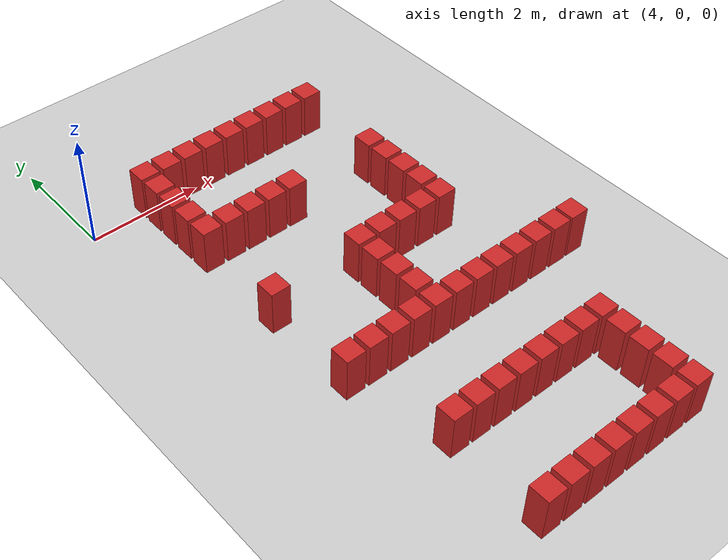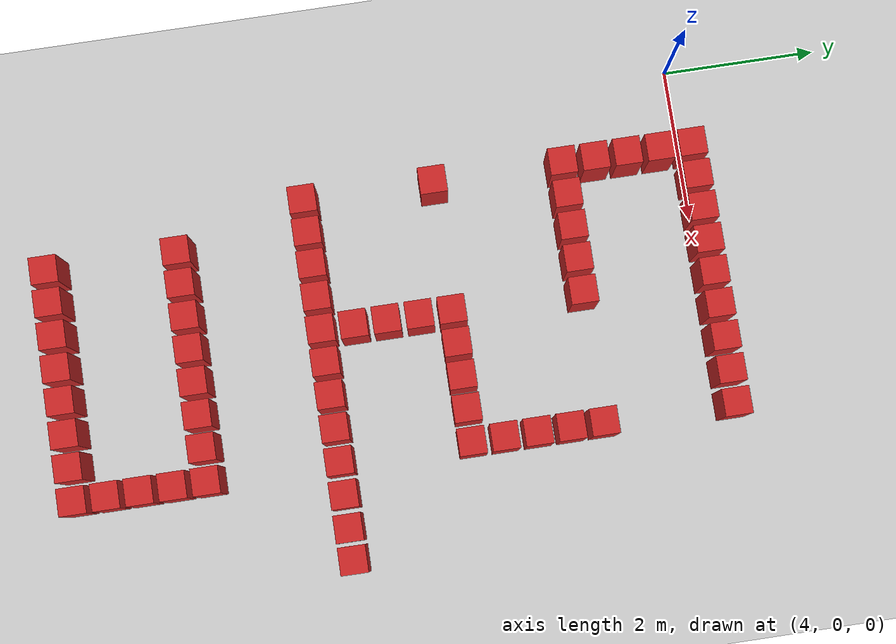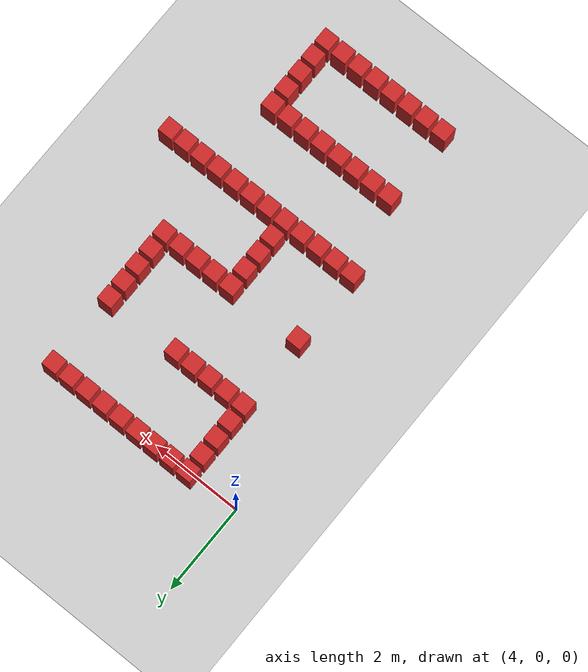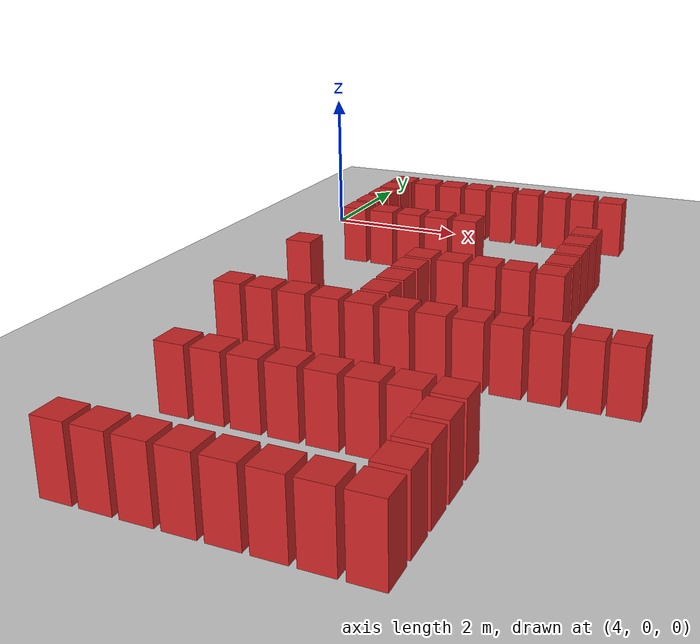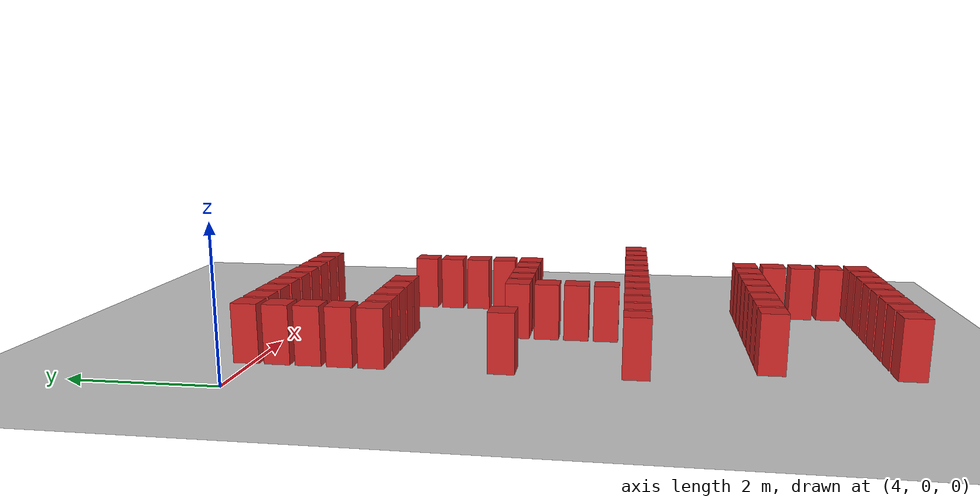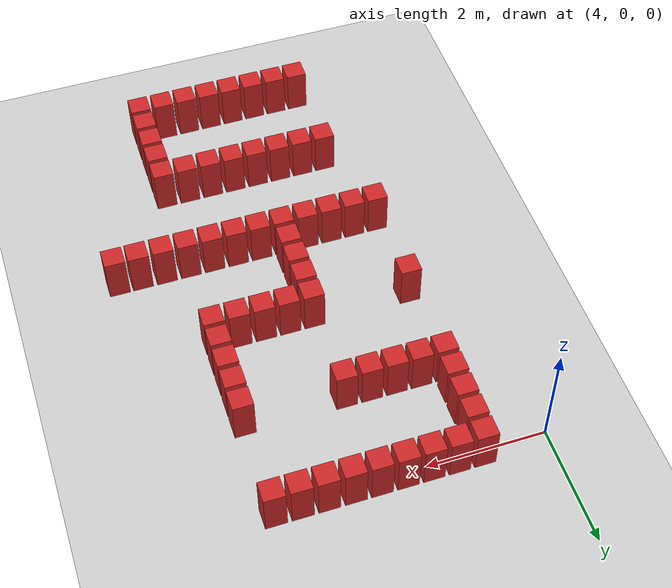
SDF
<sdf version="1.6">
 <world name="default">
  <model name="ground_plane">
   <static>1</static>
   <link name="link">
    <collision name="collision">
     <geometry><plane><normal>0 0 1</normal><size>100 100</size></plane></geometry>
     <surface><friction><ode><mu>100</mu><mu2>50</mu2></ode></friction></surface>
    </collision>
    <visual name="visual">
     <cast_shadows>0</cast_shadows>
     <geometry><plane><normal>0 0 1</normal><size>100 100</size></plane></geometry>
     <material>
      <script><uri>file://media/materials/scripts/gazebo.material</uri><name>Gazebo/Grey</name></script>
     </material>
    </visual>
   </link>
  </model>
  <model name="box_obstacle360">
   <static>0</static>
   <link name="link">
    <pose>0 0 0.1 0 -0 0</pose>
    <inertial>
     <mass>100</mass>
     <inertia>
      <ixx>0.166667</ixx>
      <ixy>0</ixy>
      <ixz>0</ixz>
      <iyy>0.166667</iyy>
      <iyz>0</iyz>
      <izz>0.166667</izz>
     </inertia>
    </inertial>
    <collision name="collision"><geometry><box><size>0.35 0.35 0.8</size></box></geometry></collision>
    <visual name="visual">
     <geometry><box><size>0.35 0.35 0.8</size></box></geometry>
     <material>
      <script><name>Gazebo/Red</name><uri>file://media/materials/scripts/gazebo.material</uri></script>
     </material>
    </visual>
   </link>
   <pose>5.11966 -4.95994 0.300001 -1e-06 1.7e-05 0.000735</pose>
  </model>
  <model name="box_obstacle361">
   <static>0</static>
   <link name="link">
    <pose>0 0 0.1 0 -0 0</pose>
    <inertial>
     <mass>100</mass>
     <inertia>
      <ixx>0.166667</ixx>
      <ixy>0</ixy>
      <ixz>0</ixz>
      <iyy>0.166667</iyy>
      <iyz>0</iyz>
      <izz>0.166667</izz>
     </inertia>
    </inertial>
    <collision name="collision"><geometry><box><size>0.35 0.35 0.8</size></box></geometry></collision>
    <visual name="visual">
     <geometry><box><size>0.35 0.35 0.8</size></box></geometry>
     <material>
      <script><name>Gazebo/Red</name><uri>file://media/materials/scripts/gazebo.material</uri></script>
     </material>
    </visual>
   </link>
   <pose>5.11966 -3.27994 0.300001 -1e-06 1.7e-05 0.000735</pose>
  </model>
  <model name="box_obstacle362">
   <static>0</static>
   <link name="link">
    <pose>0 0 0.1 0 -0 0</pose>
    <inertial>
     <mass>100</mass>
     <inertia>
      <ixx>0.166667</ixx>
      <ixy>0</ixy>
      <ixz>0</ixz>
      <iyy>0.166667</iyy>
      <iyz>0</iyz>
      <izz>0.166667</izz>
     </inertia>
    </inertial>
    <collision name="collision"><geometry><box><size>0.35 0.35 0.8</size></box></geometry></collision>
    <visual name="visual">
     <geometry><box><size>0.35 0.35 0.8</size></box></geometry>
     <material>
      <script><name>Gazebo/Red</name><uri>file://media/materials/scripts/gazebo.material</uri></script>
     </material>
    </visual>
   </link>
   <pose>5.11966 -1.59994 0.300001 -1e-06 1.7e-05 0.000735</pose>
  </model>
  <model name="box_obstacle363">
   <static>0</static>
   <link name="link">
    <pose>0 0 0.1 0 -0 0</pose>
    <inertial>
     <mass>100</mass>
     <inertia>
      <ixx>0.166667</ixx>
      <ixy>0</ixy>
      <ixz>0</ixz>
      <iyy>0.166667</iyy>
      <iyz>0</iyz>
      <izz>0.166667</izz>
     </inertia>
    </inertial>
    <collision name="collision"><geometry><box><size>0.35 0.35 0.8</size></box></geometry></collision>
    <visual name="visual">
     <geometry><box><size>0.35 0.35 0.8</size></box></geometry>
     <material>
      <script><name>Gazebo/Red</name><uri>file://media/materials/scripts/gazebo.material</uri></script>
     </material>
    </visual>
   </link>
   <pose>5.11966 -1.17994 0.300001 -1e-06 1.7e-05 0.000735</pose>
  </model>
  <model name="box_obstacle364">
   <static>0</static>
   <link name="link">
    <pose>0 0 0.1 0 -0 0</pose>
    <inertial>
     <mass>100</mass>
     <inertia>
      <ixx>0.166667</ixx>
      <ixy>0</ixy>
      <ixz>0</ixz>
      <iyy>0.166667</iyy>
      <iyz>0</iyz>
      <izz>0.166667</izz>
     </inertia>
    </inertial>
    <collision name="collision"><geometry><box><size>0.35 0.35 0.8</size></box></geometry></collision>
    <visual name="visual">
     <geometry><box><size>0.35 0.35 0.8</size></box></geometry>
     <material>
      <script><name>Gazebo/Red</name><uri>file://media/materials/scripts/gazebo.material</uri></script>
     </material>
    </visual>
   </link>
   <pose>5.11966 -0.759939 0.300001 -1e-06 1.7e-05 0.000735</pose>
  </model>
  <model name="box_obstacle365">
   <static>0</static>
   <link name="link">
    <pose>0 0 0.1 0 -0 0</pose>
    <inertial>
     <mass>100</mass>
     <inertia>
      <ixx>0.166667</ixx>
      <ixy>0</ixy>
      <ixz>0</ixz>
      <iyy>0.166667</iyy>
      <iyz>0</iyz>
      <izz>0.166667</izz>
     </inertia>
    </inertial>
    <collision name="collision"><geometry><box><size>0.35 0.35 0.8</size></box></geometry></collision>
    <visual name="visual">
     <geometry><box><size>0.35 0.35 0.8</size></box></geometry>
     <material>
      <script><name>Gazebo/Red</name><uri>file://media/materials/scripts/gazebo.material</uri></script>
     </material>
    </visual>
   </link>
   <pose>5.11966 -0.339939 0.300001 -1e-06 1.7e-05 0.000735</pose>
  </model>
  <model name="box_obstacle366">
   <static>0</static>
   <link name="link">
    <pose>0 0 0.1 0 -0 0</pose>
    <inertial>
     <mass>100</mass>
     <inertia>
      <ixx>0.166667</ixx>
      <ixy>0</ixy>
      <ixz>0</ixz>
      <iyy>0.166667</iyy>
      <iyz>0</iyz>
      <izz>0.166667</izz>
     </inertia>
    </inertial>
    <collision name="collision"><geometry><box><size>0.35 0.35 0.8</size></box></geometry></collision>
    <visual name="visual">
     <geometry><box><size>0.35 0.35 0.8</size></box></geometry>
     <material>
      <script><name>Gazebo/Red</name><uri>file://media/materials/scripts/gazebo.material</uri></script>
     </material>
    </visual>
   </link>
   <pose>5.11966 0.080061 0.300001 -1e-06 1.7e-05 0.000735</pose>
  </model>
  <model name="box_obstacle378">
   <static>0</static>
   <link name="link">
    <pose>0 0 0.1 0 -0 0</pose>
    <inertial>
     <mass>100</mass>
     <inertia>
      <ixx>0.166667</ixx>
      <ixy>0</ixy>
      <ixz>0</ixz>
      <iyy>0.166667</iyy>
      <iyz>0</iyz>
      <izz>0.166667</izz>
     </inertia>
    </inertial>
    <collision name="collision"><geometry><box><size>0.35 0.35 0.8</size></box></geometry></collision>
    <visual name="visual">
     <geometry><box><size>0.35 0.35 0.8</size></box></geometry>
     <material>
      <script><name>Gazebo/Red</name><uri>file://media/materials/scripts/gazebo.material</uri></script>
     </material>
    </visual>
   </link>
   <pose>5.53966 -8.31994 0.300001 -1e-06 1.7e-05 0.000735</pose>
  </model>
  <model name="box_obstacle379">
   <static>0</static>
   <link name="link">
    <pose>0 0 0.1 0 -0 0</pose>
    <inertial>
     <mass>100</mass>
     <inertia>
      <ixx>0.166667</ixx>
      <ixy>0</ixy>
      <ixz>0</ixz>
      <iyy>0.166667</iyy>
      <iyz>0</iyz>
      <izz>0.166667</izz>
     </inertia>
    </inertial>
    <collision name="collision"><geometry><box><size>0.35 0.35 0.8</size></box></geometry></collision>
    <visual name="visual">
     <geometry><box><size>0.35 0.35 0.8</size></box></geometry>
     <material>
      <script><name>Gazebo/Red</name><uri>file://media/materials/scripts/gazebo.material</uri></script>
     </material>
    </visual>
   </link>
   <pose>5.53966 -6.63994 0.300001 -1e-06 1.7e-05 0.000735</pose>
  </model>
  <model name="box_obstacle380">
   <static>0</static>
   <link name="link">
    <pose>0 0 0.1 0 -0 0</pose>
    <inertial>
     <mass>100</mass>
     <inertia>
      <ixx>0.166667</ixx>
      <ixy>0</ixy>
      <ixz>0</ixz>
      <iyy>0.166667</iyy>
      <iyz>0</iyz>
      <izz>0.166667</izz>
     </inertia>
    </inertial>
    <collision name="collision"><geometry><box><size>0.35 0.35 0.8</size></box></geometry></collision>
    <visual name="visual">
     <geometry><box><size>0.35 0.35 0.8</size></box></geometry>
     <material>
      <script><name>Gazebo/Red</name><uri>file://media/materials/scripts/gazebo.material</uri></script>
     </material>
    </visual>
   </link>
   <pose>5.53966 -4.95994 0.300001 -1e-06 1.7e-05 0.000735</pose>
  </model>
  <model name="box_obstacle381">
   <static>0</static>
   <link name="link">
    <pose>0 0 0.1 0 -0 0</pose>
    <inertial>
     <mass>100</mass>
     <inertia>
      <ixx>0.166667</ixx>
      <ixy>0</ixy>
      <ixz>0</ixz>
      <iyy>0.166667</iyy>
      <iyz>0</iyz>
      <izz>0.166667</izz>
     </inertia>
    </inertial>
    <collision name="collision"><geometry><box><size>0.35 0.35 0.8</size></box></geometry></collision>
    <visual name="visual">
     <geometry><box><size>0.35 0.35 0.8</size></box></geometry>
     <material>
      <script><name>Gazebo/Red</name><uri>file://media/materials/scripts/gazebo.material</uri></script>
     </material>
    </visual>
   </link>
   <pose>5.53966 -1.59994 0.300001 -1e-06 1.7e-05 0.000735</pose>
  </model>
  <model name="box_obstacle382">
   <static>0</static>
   <link name="link">
    <pose>0 0 0.1 0 -0 0</pose>
    <inertial>
     <mass>100</mass>
     <inertia>
      <ixx>0.166667</ixx>
      <ixy>0</ixy>
      <ixz>0</ixz>
      <iyy>0.166667</iyy>
      <iyz>0</iyz>
      <izz>0.166667</izz>
     </inertia>
    </inertial>
    <collision name="collision"><geometry><box><size>0.35 0.35 0.8</size></box></geometry></collision>
    <visual name="visual">
     <geometry><box><size>0.35 0.35 0.8</size></box></geometry>
     <material>
      <script><name>Gazebo/Red</name><uri>file://media/materials/scripts/gazebo.material</uri></script>
     </material>
    </visual>
   </link>
   <pose>5.53966 0.080061 0.300001 -1e-06 1.7e-05 0.000735</pose>
  </model>
  <model name="box_obstacle386">
   <static>0</static>
   <link name="link">
    <pose>0 0 0.1 0 -0 0</pose>
    <inertial>
     <mass>100</mass>
     <inertia>
      <ixx>0.166667</ixx>
      <ixy>0</ixy>
      <ixz>0</ixz>
      <iyy>0.166667</iyy>
      <iyz>0</iyz>
      <izz>0.166667</izz>
     </inertia>
    </inertial>
    <collision name="collision"><geometry><box><size>0.35 0.35 0.8</size></box></geometry></collision>
    <visual name="visual">
     <geometry><box><size>0.35 0.35 0.8</size></box></geometry>
     <material>
      <script><name>Gazebo/Red</name><uri>file://media/materials/scripts/gazebo.material</uri></script>
     </material>
    </visual>
   </link>
   <pose>5.95966 -8.31994 0.300001 -1e-06 1.7e-05 0.000735</pose>
  </model>
  <model name="box_obstacle387">
   <static>0</static>
   <link name="link">
    <pose>0 0 0.1 0 -0 0</pose>
    <inertial>
     <mass>100</mass>
     <inertia>
      <ixx>0.166667</ixx>
      <ixy>0</ixy>
      <ixz>0</ixz>
      <iyy>0.166667</iyy>
      <iyz>0</iyz>
      <izz>0.166667</izz>
     </inertia>
    </inertial>
    <collision name="collision"><geometry><box><size>0.35 0.35 0.8</size></box></geometry></collision>
    <visual name="visual">
     <geometry><box><size>0.35 0.35 0.8</size></box></geometry>
     <material>
      <script><name>Gazebo/Red</name><uri>file://media/materials/scripts/gazebo.material</uri></script>
     </material>
    </visual>
   </link>
   <pose>5.95966 -6.63994 0.300001 -1e-06 1.7e-05 0.000735</pose>
  </model>
  <model name="box_obstacle388">
   <static>0</static>
   <link name="link">
    <pose>0 0 0.1 0 -0 0</pose>
    <inertial>
     <mass>100</mass>
     <inertia>
      <ixx>0.166667</ixx>
      <ixy>0</ixy>
      <ixz>0</ixz>
      <iyy>0.166667</iyy>
      <iyz>0</iyz>
      <izz>0.166667</izz>
     </inertia>
    </inertial>
    <collision name="collision"><geometry><box><size>0.35 0.35 0.8</size></box></geometry></collision>
    <visual name="visual">
     <geometry><box><size>0.35 0.35 0.8</size></box></geometry>
     <material>
      <script><name>Gazebo/Red</name><uri>file://media/materials/scripts/gazebo.material</uri></script>
     </material>
    </visual>
   </link>
   <pose>5.95966 -4.95994 0.300001 -1e-06 1.7e-05 0.000735</pose>
  </model>
  <model name="box_obstacle389">
   <static>0</static>
   <link name="link">
    <pose>0 0 0.1 0 -0 0</pose>
    <inertial>
     <mass>100</mass>
     <inertia>
      <ixx>0.166667</ixx>
      <ixy>0</ixy>
      <ixz>0</ixz>
      <iyy>0.166667</iyy>
      <iyz>0</iyz>
      <izz>0.166667</izz>
     </inertia>
    </inertial>
    <collision name="collision"><geometry><box><size>0.35 0.35 0.8</size></box></geometry></collision>
    <visual name="visual">
     <geometry><box><size>0.35 0.35 0.8</size></box></geometry>
     <material>
      <script><name>Gazebo/Red</name><uri>file://media/materials/scripts/gazebo.material</uri></script>
     </material>
    </visual>
   </link>
   <pose>5.95966 -1.59994 0.300001 -1e-06 1.7e-05 0.000735</pose>
  </model>
  <model name="box_obstacle390">
   <static>0</static>
   <link name="link">
    <pose>0 0 0.1 0 -0 0</pose>
    <inertial>
     <mass>100</mass>
     <inertia>
      <ixx>0.166667</ixx>
      <ixy>0</ixy>
      <ixz>0</ixz>
      <iyy>0.166667</iyy>
      <iyz>0</iyz>
      <izz>0.166667</izz>
     </inertia>
    </inertial>
    <collision name="collision"><geometry><box><size>0.35 0.35 0.8</size></box></geometry></collision>
    <visual name="visual">
     <geometry><box><size>0.35 0.35 0.8</size></box></geometry>
     <material>
      <script><name>Gazebo/Red</name><uri>file://media/materials/scripts/gazebo.material</uri></script>
     </material>
    </visual>
   </link>
   <pose>5.95966 0.080061 0.300001 -1e-06 1.7e-05 0.000735</pose>
  </model>
  <model name="box_obstacle394">
   <static>0</static>
   <link name="link">
    <pose>0 0 0.1 0 -0 0</pose>
    <inertial>
     <mass>100</mass>
     <inertia>
      <ixx>0.166667</ixx>
      <ixy>0</ixy>
      <ixz>0</ixz>
      <iyy>0.166667</iyy>
      <iyz>0</iyz>
      <izz>0.166667</izz>
     </inertia>
    </inertial>
    <collision name="collision"><geometry><box><size>0.35 0.35 0.8</size></box></geometry></collision>
    <visual name="visual">
     <geometry><box><size>0.35 0.35 0.8</size></box></geometry>
     <material>
      <script><name>Gazebo/Red</name><uri>file://media/materials/scripts/gazebo.material</uri></script>
     </material>
    </visual>
   </link>
   <pose>6.37966 -8.31994 0.300001 -1e-06 1.7e-05 0.000735</pose>
  </model>
  <model name="box_obstacle395">
   <static>0</static>
   <link name="link">
    <pose>0 0 0.1 0 -0 0</pose>
    <inertial>
     <mass>100</mass>
     <inertia>
      <ixx>0.166667</ixx>
      <ixy>0</ixy>
      <ixz>0</ixz>
      <iyy>0.166667</iyy>
      <iyz>0</iyz>
      <izz>0.166667</izz>
     </inertia>
    </inertial>
    <collision name="collision"><geometry><box><size>0.35 0.35 0.8</size></box></geometry></collision>
    <visual name="visual">
     <geometry><box><size>0.35 0.35 0.8</size></box></geometry>
     <material>
      <script><name>Gazebo/Red</name><uri>file://media/materials/scripts/gazebo.material</uri></script>
     </material>
    </visual>
   </link>
   <pose>6.37966 -6.63994 0.300001 -1e-06 1.7e-05 0.000735</pose>
  </model>
  <model name="box_obstacle396">
   <static>0</static>
   <link name="link">
    <pose>0 0 0.1 0 -0 0</pose>
    <inertial>
     <mass>100</mass>
     <inertia>
      <ixx>0.166667</ixx>
      <ixy>0</ixy>
      <ixz>0</ixz>
      <iyy>0.166667</iyy>
      <iyz>0</iyz>
      <izz>0.166667</izz>
     </inertia>
    </inertial>
    <collision name="collision"><geometry><box><size>0.35 0.35 0.8</size></box></geometry></collision>
    <visual name="visual">
     <geometry><box><size>0.35 0.35 0.8</size></box></geometry>
     <material>
      <script><name>Gazebo/Red</name><uri>file://media/materials/scripts/gazebo.material</uri></script>
     </material>
    </visual>
   </link>
   <pose>6.37966 -4.95994 0.300001 -1e-06 1.7e-05 0.000735</pose>
  </model>
  <model name="box_obstacle397">
   <static>0</static>
   <link name="link">
    <pose>0 0 0.1 0 -0 0</pose>
    <inertial>
     <mass>100</mass>
     <inertia>
      <ixx>0.166667</ixx>
      <ixy>0</ixy>
      <ixz>0</ixz>
      <iyy>0.166667</iyy>
      <iyz>0</iyz>
      <izz>0.166667</izz>
     </inertia>
    </inertial>
    <collision name="collision"><geometry><box><size>0.35 0.35 0.8</size></box></geometry></collision>
    <visual name="visual">
     <geometry><box><size>0.35 0.35 0.8</size></box></geometry>
     <material>
      <script><name>Gazebo/Red</name><uri>file://media/materials/scripts/gazebo.material</uri></script>
     </material>
    </visual>
   </link>
   <pose>6.37966 -1.59994 0.300001 -1e-06 1.7e-05 0.000735</pose>
  </model>
  <model name="box_obstacle398">
   <static>0</static>
   <link name="link">
    <pose>0 0 0.1 0 -0 0</pose>
    <inertial>
     <mass>100</mass>
     <inertia>
      <ixx>0.166667</ixx>
      <ixy>0</ixy>
      <ixz>0</ixz>
      <iyy>0.166667</iyy>
      <iyz>0</iyz>
      <izz>0.166667</izz>
     </inertia>
    </inertial>
    <collision name="collision"><geometry><box><size>0.35 0.35 0.8</size></box></geometry></collision>
    <visual name="visual">
     <geometry><box><size>0.35 0.35 0.8</size></box></geometry>
     <material>
      <script><name>Gazebo/Red</name><uri>file://media/materials/scripts/gazebo.material</uri></script>
     </material>
    </visual>
   </link>
   <pose>6.37966 0.080061 0.300001 -1e-06 1.7e-05 0.000735</pose>
  </model>
  <model name="box_obstacle402">
   <static>0</static>
   <link name="link">
    <pose>0 0 0.1 0 -0 0</pose>
    <inertial>
     <mass>100</mass>
     <inertia>
      <ixx>0.166667</ixx>
      <ixy>0</ixy>
      <ixz>0</ixz>
      <iyy>0.166667</iyy>
      <iyz>0</iyz>
      <izz>0.166667</izz>
     </inertia>
    </inertial>
    <collision name="collision"><geometry><box><size>0.35 0.35 0.8</size></box></geometry></collision>
    <visual name="visual">
     <geometry><box><size>0.35 0.35 0.8</size></box></geometry>
     <material>
      <script><name>Gazebo/Red</name><uri>file://media/materials/scripts/gazebo.material</uri></script>
     </material>
    </visual>
   </link>
   <pose>6.79966 -8.31994 0.300001 -1e-06 1.7e-05 0.000735</pose>
  </model>
  <model name="box_obstacle403">
   <static>0</static>
   <link name="link">
    <pose>0 0 0.1 0 -0 0</pose>
    <inertial>
     <mass>100</mass>
     <inertia>
      <ixx>0.166667</ixx>
      <ixy>0</ixy>
      <ixz>0</ixz>
      <iyy>0.166667</iyy>
      <iyz>0</iyz>
      <izz>0.166667</izz>
     </inertia>
    </inertial>
    <collision name="collision"><geometry><box><size>0.35 0.35 0.8</size></box></geometry></collision>
    <visual name="visual">
     <geometry><box><size>0.35 0.35 0.8</size></box></geometry>
     <material>
      <script><name>Gazebo/Red</name><uri>file://media/materials/scripts/gazebo.material</uri></script>
     </material>
    </visual>
   </link>
   <pose>6.79966 -6.63994 0.300001 -1e-06 1.7e-05 0.000735</pose>
  </model>
  <model name="box_obstacle404">
   <static>0</static>
   <link name="link">
    <pose>0 0 0.1 0 -0 0</pose>
    <inertial>
     <mass>100</mass>
     <inertia>
      <ixx>0.166667</ixx>
      <ixy>0</ixy>
      <ixz>0</ixz>
      <iyy>0.166667</iyy>
      <iyz>0</iyz>
      <izz>0.166667</izz>
     </inertia>
    </inertial>
    <collision name="collision"><geometry><box><size>0.35 0.35 0.8</size></box></geometry></collision>
    <visual name="visual">
     <geometry><box><size>0.35 0.35 0.8</size></box></geometry>
     <material>
      <script><name>Gazebo/Red</name><uri>file://media/materials/scripts/gazebo.material</uri></script>
     </material>
    </visual>
   </link>
   <pose>6.79966 -4.95994 0.300001 -1e-06 1.7e-05 0.000735</pose>
  </model>
  <model name="box_obstacle405">
   <static>0</static>
   <link name="link">
    <pose>0 0 0.1 0 -0 0</pose>
    <inertial>
     <mass>100</mass>
     <inertia>
      <ixx>0.166667</ixx>
      <ixy>0</ixy>
      <ixz>0</ixz>
      <iyy>0.166667</iyy>
      <iyz>0</iyz>
      <izz>0.166667</izz>
     </inertia>
    </inertial>
    <collision name="collision"><geometry><box><size>0.35 0.35 0.8</size></box></geometry></collision>
    <visual name="visual">
     <geometry><box><size>0.35 0.35 0.8</size></box></geometry>
     <material>
      <script><name>Gazebo/Red</name><uri>file://media/materials/scripts/gazebo.material</uri></script>
     </material>
    </visual>
   </link>
   <pose>6.79966 -4.53994 0.300001 -1e-06 1.7e-05 0.000735</pose>
  </model>
  <model name="box_obstacle406">
   <static>0</static>
   <link name="link">
    <pose>0 0 0.1 0 -0 0</pose>
    <inertial>
     <mass>100</mass>
     <inertia>
      <ixx>0.166667</ixx>
      <ixy>0</ixy>
      <ixz>0</ixz>
      <iyy>0.166667</iyy>
      <iyz>0</iyz>
      <izz>0.166667</izz>
     </inertia>
    </inertial>
    <collision name="collision"><geometry><box><size>0.35 0.35 0.8</size></box></geometry></collision>
    <visual name="visual">
     <geometry><box><size>0.35 0.35 0.8</size></box></geometry>
     <material>
      <script><name>Gazebo/Red</name><uri>file://media/materials/scripts/gazebo.material</uri></script>
     </material>
    </visual>
   </link>
   <pose>6.79966 -4.11994 0.300001 -1e-06 1.7e-05 0.000735</pose>
  </model>
  <model name="box_obstacle407">
   <static>0</static>
   <link name="link">
    <pose>0 0 0.1 0 -0 0</pose>
    <inertial>
     <mass>100</mass>
     <inertia>
      <ixx>0.166667</ixx>
      <ixy>0</ixy>
      <ixz>0</ixz>
      <iyy>0.166667</iyy>
      <iyz>0</iyz>
      <izz>0.166667</izz>
     </inertia>
    </inertial>
    <collision name="collision"><geometry><box><size>0.35 0.35 0.8</size></box></geometry></collision>
    <visual name="visual">
     <geometry><box><size>0.35 0.35 0.8</size></box></geometry>
     <material>
      <script><name>Gazebo/Red</name><uri>file://media/materials/scripts/gazebo.material</uri></script>
     </material>
    </visual>
   </link>
   <pose>6.79966 -3.69994 0.300001 -1e-06 1.7e-05 0.000735</pose>
  </model>
  <model name="box_obstacle408">
   <static>0</static>
   <link name="link">
    <pose>0 0 0.1 0 -0 0</pose>
    <inertial>
     <mass>100</mass>
     <inertia>
      <ixx>0.166667</ixx>
      <ixy>0</ixy>
      <ixz>0</ixz>
      <iyy>0.166667</iyy>
      <iyz>0</iyz>
      <izz>0.166667</izz>
     </inertia>
    </inertial>
    <collision name="collision"><geometry><box><size>0.35 0.35 0.8</size></box></geometry></collision>
    <visual name="visual">
     <geometry><box><size>0.35 0.35 0.8</size></box></geometry>
     <material>
      <script><name>Gazebo/Red</name><uri>file://media/materials/scripts/gazebo.material</uri></script>
     </material>
    </visual>
   </link>
   <pose>6.79966 -3.27994 0.300001 -1e-06 1.7e-05 0.000735</pose>
  </model>
  <model name="box_obstacle409">
   <static>0</static>
   <link name="link">
    <pose>0 0 0.1 0 -0 0</pose>
    <inertial>
     <mass>100</mass>
     <inertia>
      <ixx>0.166667</ixx>
      <ixy>0</ixy>
      <ixz>0</ixz>
      <iyy>0.166667</iyy>
      <iyz>0</iyz>
      <izz>0.166667</izz>
     </inertia>
    </inertial>
    <collision name="collision"><geometry><box><size>0.35 0.35 0.8</size></box></geometry></collision>
    <visual name="visual">
     <geometry><box><size>0.35 0.35 0.8</size></box></geometry>
     <material>
      <script><name>Gazebo/Red</name><uri>file://media/materials/scripts/gazebo.material</uri></script>
     </material>
    </visual>
   </link>
   <pose>6.79966 -1.59994 0.300001 -1e-06 1.7e-05 0.000735</pose>
  </model>
  <model name="box_obstacle410">
   <static>0</static>
   <link name="link">
    <pose>0 0 0.1 0 -0 0</pose>
    <inertial>
     <mass>100</mass>
     <inertia>
      <ixx>0.166667</ixx>
      <ixy>0</ixy>
      <ixz>0</ixz>
      <iyy>0.166667</iyy>
      <iyz>0</iyz>
      <izz>0.166667</izz>
     </inertia>
    </inertial>
    <collision name="collision"><geometry><box><size>0.35 0.35 0.8</size></box></geometry></collision>
    <visual name="visual">
     <geometry><box><size>0.35 0.35 0.8</size></box></geometry>
     <material>
      <script><name>Gazebo/Red</name><uri>file://media/materials/scripts/gazebo.material</uri></script>
     </material>
    </visual>
   </link>
   <pose>6.79966 0.080061 0.300001 -1e-06 1.7e-05 0.000735</pose>
  </model>
  <model name="box_obstacle425">
   <static>0</static>
   <link name="link">
    <pose>0 0 0.1 0 -0 0</pose>
    <inertial>
     <mass>100</mass>
     <inertia>
      <ixx>0.166667</ixx>
      <ixy>0</ixy>
      <ixz>0</ixz>
      <iyy>0.166667</iyy>
      <iyz>0</iyz>
      <izz>0.166667</izz>
     </inertia>
    </inertial>
    <collision name="collision"><geometry><box><size>0.35 0.35 0.8</size></box></geometry></collision>
    <visual name="visual">
     <geometry><box><size>0.35 0.35 0.8</size></box></geometry>
     <material>
      <script><name>Gazebo/Red</name><uri>file://media/materials/scripts/gazebo.material</uri></script>
     </material>
    </visual>
   </link>
   <pose>7.21966 -8.31994 0.300001 -1e-06 1.7e-05 0.000735</pose>
  </model>
  <model name="box_obstacle426">
   <static>0</static>
   <link name="link">
    <pose>0 0 0.1 0 -0 0</pose>
    <inertial>
     <mass>100</mass>
     <inertia>
      <ixx>0.166667</ixx>
      <ixy>0</ixy>
      <ixz>0</ixz>
      <iyy>0.166667</iyy>
      <iyz>0</iyz>
      <izz>0.166667</izz>
     </inertia>
    </inertial>
    <collision name="collision"><geometry><box><size>0.35 0.35 0.8</size></box></geometry></collision>
    <visual name="visual">
     <geometry><box><size>0.35 0.35 0.8</size></box></geometry>
     <material>
      <script><name>Gazebo/Red</name><uri>file://media/materials/scripts/gazebo.material</uri></script>
     </material>
    </visual>
   </link>
   <pose>7.21966 -6.63994 0.300001 -1e-06 1.7e-05 0.000735</pose>
  </model>
  <model name="box_obstacle427">
   <static>0</static>
   <link name="link">
    <pose>0 0 0.1 0 -0 0</pose>
    <inertial>
     <mass>100</mass>
     <inertia>
      <ixx>0.166667</ixx>
      <ixy>0</ixy>
      <ixz>0</ixz>
      <iyy>0.166667</iyy>
      <iyz>0</iyz>
      <izz>0.166667</izz>
     </inertia>
    </inertial>
    <collision name="collision"><geometry><box><size>0.35 0.35 0.8</size></box></geometry></collision>
    <visual name="visual">
     <geometry><box><size>0.35 0.35 0.8</size></box></geometry>
     <material>
      <script><name>Gazebo/Red</name><uri>file://media/materials/scripts/gazebo.material</uri></script>
     </material>
    </visual>
   </link>
   <pose>7.21966 -4.95994 0.300001 -1e-06 1.7e-05 0.000735</pose>
  </model>
  <model name="box_obstacle428">
   <static>0</static>
   <link name="link">
    <pose>0 0 0.1 0 -0 0</pose>
    <inertial>
     <mass>100</mass>
     <inertia>
      <ixx>0.166667</ixx>
      <ixy>0</ixy>
      <ixz>0</ixz>
      <iyy>0.166667</iyy>
      <iyz>0</iyz>
      <izz>0.166667</izz>
     </inertia>
    </inertial>
    <collision name="collision"><geometry><box><size>0.35 0.35 0.8</size></box></geometry></collision>
    <visual name="visual">
     <geometry><box><size>0.35 0.35 0.8</size></box></geometry>
     <material>
      <script><name>Gazebo/Red</name><uri>file://media/materials/scripts/gazebo.material</uri></script>
     </material>
    </visual>
   </link>
   <pose>7.21966 -3.27994 0.300001 -1e-06 1.7e-05 0.000735</pose>
  </model>
  <model name="box_obstacle429">
   <static>0</static>
   <link name="link">
    <pose>0 0 0.1 0 -0 0</pose>
    <inertial>
     <mass>100</mass>
     <inertia>
      <ixx>0.166667</ixx>
      <ixy>0</ixy>
      <ixz>0</ixz>
      <iyy>0.166667</iyy>
      <iyz>0</iyz>
      <izz>0.166667</izz>
     </inertia>
    </inertial>
    <collision name="collision"><geometry><box><size>0.35 0.35 0.8</size></box></geometry></collision>
    <visual name="visual">
     <geometry><box><size>0.35 0.35 0.8</size></box></geometry>
     <material>
      <script><name>Gazebo/Red</name><uri>file://media/materials/scripts/gazebo.material</uri></script>
     </material>
    </visual>
   </link>
   <pose>7.21966 0.080061 0.300001 -1e-06 1.7e-05 0.000735</pose>
  </model>
  <model name="box_obstacle433">
   <static>0</static>
   <link name="link">
    <pose>0 0 0.1 0 -0 0</pose>
    <inertial>
     <mass>100</mass>
     <inertia>
      <ixx>0.166667</ixx>
      <ixy>0</ixy>
      <ixz>0</ixz>
      <iyy>0.166667</iyy>
      <iyz>0</iyz>
      <izz>0.166667</izz>
     </inertia>
    </inertial>
    <collision name="collision"><geometry><box><size>0.35 0.35 0.8</size></box></geometry></collision>
    <visual name="visual">
     <geometry><box><size>0.35 0.35 0.8</size></box></geometry>
     <material>
      <script><name>Gazebo/Red</name><uri>file://media/materials/scripts/gazebo.material</uri></script>
     </material>
    </visual>
   </link>
   <pose>7.63966 -8.31994 0.300001 -1e-06 1.7e-05 0.000735</pose>
  </model>
  <model name="box_obstacle434">
   <static>0</static>
   <link name="link">
    <pose>0 0 0.1 0 -0 0</pose>
    <inertial>
     <mass>100</mass>
     <inertia>
      <ixx>0.166667</ixx>
      <ixy>0</ixy>
      <ixz>0</ixz>
      <iyy>0.166667</iyy>
      <iyz>0</iyz>
      <izz>0.166667</izz>
     </inertia>
    </inertial>
    <collision name="collision"><geometry><box><size>0.35 0.35 0.8</size></box></geometry></collision>
    <visual name="visual">
     <geometry><box><size>0.35 0.35 0.8</size></box></geometry>
     <material>
      <script><name>Gazebo/Red</name><uri>file://media/materials/scripts/gazebo.material</uri></script>
     </material>
    </visual>
   </link>
   <pose>7.63966 -6.63994 0.300001 -1e-06 1.7e-05 0.000735</pose>
  </model>
  <model name="box_obstacle435">
   <static>0</static>
   <link name="link">
    <pose>0 0 0.1 0 -0 0</pose>
    <inertial>
     <mass>100</mass>
     <inertia>
      <ixx>0.166667</ixx>
      <ixy>0</ixy>
      <ixz>0</ixz>
      <iyy>0.166667</iyy>
      <iyz>0</iyz>
      <izz>0.166667</izz>
     </inertia>
    </inertial>
    <collision name="collision"><geometry><box><size>0.35 0.35 0.8</size></box></geometry></collision>
    <visual name="visual">
     <geometry><box><size>0.35 0.35 0.8</size></box></geometry>
     <material>
      <script><name>Gazebo/Red</name><uri>file://media/materials/scripts/gazebo.material</uri></script>
     </material>
    </visual>
   </link>
   <pose>7.63966 -4.95994 0.300001 -1e-06 1.7e-05 0.000735</pose>
  </model>
  <model name="box_obstacle436">
   <static>0</static>
   <link name="link">
    <pose>0 0 0.1 0 -0 0</pose>
    <inertial>
     <mass>100</mass>
     <inertia>
      <ixx>0.166667</ixx>
      <ixy>0</ixy>
      <ixz>0</ixz>
      <iyy>0.166667</iyy>
      <iyz>0</iyz>
      <izz>0.166667</izz>
     </inertia>
    </inertial>
    <collision name="collision"><geometry><box><size>0.35 0.35 0.8</size></box></geometry></collision>
    <visual name="visual">
     <geometry><box><size>0.35 0.35 0.8</size></box></geometry>
     <material>
      <script><name>Gazebo/Red</name><uri>file://media/materials/scripts/gazebo.material</uri></script>
     </material>
    </visual>
   </link>
   <pose>7.63966 -3.27994 0.300001 -1e-06 1.7e-05 0.000735</pose>
  </model>
  <model name="box_obstacle437">
   <static>0</static>
   <link name="link">
    <pose>0 0 0.1 0 -0 0</pose>
    <inertial>
     <mass>100</mass>
     <inertia>
      <ixx>0.166667</ixx>
      <ixy>0</ixy>
      <ixz>0</ixz>
      <iyy>0.166667</iyy>
      <iyz>0</iyz>
      <izz>0.166667</izz>
     </inertia>
    </inertial>
    <collision name="collision"><geometry><box><size>0.35 0.35 0.8</size></box></geometry></collision>
    <visual name="visual">
     <geometry><box><size>0.35 0.35 0.8</size></box></geometry>
     <material>
      <script><name>Gazebo/Red</name><uri>file://media/materials/scripts/gazebo.material</uri></script>
     </material>
    </visual>
   </link>
   <pose>7.63966 0.080061 0.300001 -1e-06 1.7e-05 0.000735</pose>
  </model>
  <model name="box_obstacle441">
   <static>0</static>
   <link name="link">
    <pose>0 0 0.1 0 -0 0</pose>
    <inertial>
     <mass>100</mass>
     <inertia>
      <ixx>0.166667</ixx>
      <ixy>0</ixy>
      <ixz>0</ixz>
      <iyy>0.166667</iyy>
      <iyz>0</iyz>
      <izz>0.166667</izz>
     </inertia>
    </inertial>
    <collision name="collision"><geometry><box><size>0.35 0.35 0.8</size></box></geometry></collision>
    <visual name="visual">
     <geometry><box><size>0.35 0.35 0.8</size></box></geometry>
     <material>
      <script><name>Gazebo/Red</name><uri>file://media/materials/scripts/gazebo.material</uri></script>
     </material>
    </visual>
   </link>
   <pose>8.05966 -8.31994 0.300001 -1e-06 1.7e-05 0.000735</pose>
  </model>
  <model name="box_obstacle442">
   <static>0</static>
   <link name="link">
    <pose>0 0 0.1 0 -0 0</pose>
    <inertial>
     <mass>100</mass>
     <inertia>
      <ixx>0.166667</ixx>
      <ixy>0</ixy>
      <ixz>0</ixz>
      <iyy>0.166667</iyy>
      <iyz>0</iyz>
      <izz>0.166667</izz>
     </inertia>
    </inertial>
    <collision name="collision"><geometry><box><size>0.35 0.35 0.8</size></box></geometry></collision>
    <visual name="visual">
     <geometry><box><size>0.35 0.35 0.8</size></box></geometry>
     <material>
      <script><name>Gazebo/Red</name><uri>file://media/materials/scripts/gazebo.material</uri></script>
     </material>
    </visual>
   </link>
   <pose>8.05966 -6.63994 0.300001 -1e-06 1.7e-05 0.000735</pose>
  </model>
  <model name="box_obstacle443">
   <static>0</static>
   <link name="link">
    <pose>0 0 0.1 0 -0 0</pose>
    <inertial>
     <mass>100</mass>
     <inertia>
      <ixx>0.166667</ixx>
      <ixy>0</ixy>
      <ixz>0</ixz>
      <iyy>0.166667</iyy>
      <iyz>0</iyz>
      <izz>0.166667</izz>
     </inertia>
    </inertial>
    <collision name="collision"><geometry><box><size>0.35 0.35 0.8</size></box></geometry></collision>
    <visual name="visual">
     <geometry><box><size>0.35 0.35 0.8</size></box></geometry>
     <material>
      <script><name>Gazebo/Red</name><uri>file://media/materials/scripts/gazebo.material</uri></script>
     </material>
    </visual>
   </link>
   <pose>8.05966 -4.95994 0.300001 -1e-06 1.7e-05 0.000735</pose>
  </model>
  <model name="box_obstacle444">
   <static>0</static>
   <link name="link">
    <pose>0 0 0.1 0 -0 0</pose>
    <inertial>
     <mass>100</mass>
     <inertia>
      <ixx>0.166667</ixx>
      <ixy>0</ixy>
      <ixz>0</ixz>
      <iyy>0.166667</iyy>
      <iyz>0</iyz>
      <izz>0.166667</izz>
     </inertia>
    </inertial>
    <collision name="collision"><geometry><box><size>0.35 0.35 0.8</size></box></geometry></collision>
    <visual name="visual">
     <geometry><box><size>0.35 0.35 0.8</size></box></geometry>
     <material>
      <script><name>Gazebo/Red</name><uri>file://media/materials/scripts/gazebo.material</uri></script>
     </material>
    </visual>
   </link>
   <pose>8.05966 -3.27994 0.300001 -1e-06 1.7e-05 0.000735</pose>
  </model>
  <model name="box_obstacle445">
   <static>0</static>
   <link name="link">
    <pose>0 0 0.1 0 -0 0</pose>
    <inertial>
     <mass>100</mass>
     <inertia>
      <ixx>0.166667</ixx>
      <ixy>0</ixy>
      <ixz>0</ixz>
      <iyy>0.166667</iyy>
      <iyz>0</iyz>
      <izz>0.166667</izz>
     </inertia>
    </inertial>
    <collision name="collision"><geometry><box><size>0.35 0.35 0.8</size></box></geometry></collision>
    <visual name="visual">
     <geometry><box><size>0.35 0.35 0.8</size></box></geometry>
     <material>
      <script><name>Gazebo/Red</name><uri>file://media/materials/scripts/gazebo.material</uri></script>
     </material>
    </visual>
   </link>
   <pose>8.05966 0.080061 0.300001 -1e-06 1.7e-05 0.000735</pose>
  </model>
  <model name="box_obstacle449">
   <static>0</static>
   <link name="link">
    <pose>0 0 0.1 0 -0 0</pose>
    <inertial>
     <mass>100</mass>
     <inertia>
      <ixx>0.166667</ixx>
      <ixy>0</ixy>
      <ixz>0</ixz>
      <iyy>0.166667</iyy>
      <iyz>0</iyz>
      <izz>0.166667</izz>
     </inertia>
    </inertial>
    <collision name="collision"><geometry><box><size>0.35 0.35 0.8</size></box></geometry></collision>
    <visual name="visual">
     <geometry><box><size>0.35 0.35 0.8</size></box></geometry>
     <material>
      <script><name>Gazebo/Red</name><uri>file://media/materials/scripts/gazebo.material</uri></script>
     </material>
    </visual>
   </link>
   <pose>8.47966 -8.31994 0.300001 -1e-06 1.7e-05 0.000735</pose>
  </model>
  <model name="box_obstacle450">
   <static>0</static>
   <link name="link">
    <pose>0 0 0.1 0 -0 0</pose>
    <inertial>
     <mass>100</mass>
     <inertia>
      <ixx>0.166667</ixx>
      <ixy>0</ixy>
      <ixz>0</ixz>
      <iyy>0.166667</iyy>
      <iyz>0</iyz>
      <izz>0.166667</izz>
     </inertia>
    </inertial>
    <collision name="collision"><geometry><box><size>0.35 0.35 0.8</size></box></geometry></collision>
    <visual name="visual">
     <geometry><box><size>0.35 0.35 0.8</size></box></geometry>
     <material>
      <script><name>Gazebo/Red</name><uri>file://media/materials/scripts/gazebo.material</uri></script>
     </material>
    </visual>
   </link>
   <pose>8.47966 -7.89994 0.300001 -1e-06 1.7e-05 0.000735</pose>
  </model>
  <model name="box_obstacle451">
   <static>0</static>
   <link name="link">
    <pose>0 0 0.1 0 -0 0</pose>
    <inertial>
     <mass>100</mass>
     <inertia>
      <ixx>0.166667</ixx>
      <ixy>0</ixy>
      <ixz>0</ixz>
      <iyy>0.166667</iyy>
      <iyz>0</iyz>
      <izz>0.166667</izz>
     </inertia>
    </inertial>
    <collision name="collision"><geometry><box><size>0.35 0.35 0.8</size></box></geometry></collision>
    <visual name="visual">
     <geometry><box><size>0.35 0.35 0.8</size></box></geometry>
     <material>
      <script><name>Gazebo/Red</name><uri>file://media/materials/scripts/gazebo.material</uri></script>
     </material>
    </visual>
   </link>
   <pose>8.47966 -7.47994 0.300001 -1e-06 1.7e-05 0.000735</pose>
  </model>
  <model name="box_obstacle452">
   <static>0</static>
   <link name="link">
    <pose>0 0 0.1 0 -0 0</pose>
    <inertial>
     <mass>100</mass>
     <inertia>
      <ixx>0.166667</ixx>
      <ixy>0</ixy>
      <ixz>0</ixz>
      <iyy>0.166667</iyy>
      <iyz>0</iyz>
      <izz>0.166667</izz>
     </inertia>
    </inertial>
    <collision name="collision"><geometry><box><size>0.35 0.35 0.8</size></box></geometry></collision>
    <visual name="visual">
     <geometry><box><size>0.35 0.35 0.8</size></box></geometry>
     <material>
      <script><name>Gazebo/Red</name><uri>file://media/materials/scripts/gazebo.material</uri></script>
     </material>
    </visual>
   </link>
   <pose>8.47966 -7.05994 0.300001 -1e-06 1.7e-05 0.000735</pose>
  </model>
  <model name="box_obstacle453">
   <static>0</static>
   <link name="link">
    <pose>0 0 0.1 0 -0 0</pose>
    <inertial>
     <mass>100</mass>
     <inertia>
      <ixx>0.166667</ixx>
      <ixy>0</ixy>
      <ixz>0</ixz>
      <iyy>0.166667</iyy>
      <iyz>0</iyz>
      <izz>0.166667</izz>
     </inertia>
    </inertial>
    <collision name="collision"><geometry><box><size>0.35 0.35 0.8</size></box></geometry></collision>
    <visual name="visual">
     <geometry><box><size>0.35 0.35 0.8</size></box></geometry>
     <material>
      <script><name>Gazebo/Red</name><uri>file://media/materials/scripts/gazebo.material</uri></script>
     </material>
    </visual>
   </link>
   <pose>8.47966 -6.63994 0.300001 -1e-06 1.7e-05 0.000735</pose>
  </model>
  <model name="box_obstacle454">
   <static>0</static>
   <link name="link">
    <pose>0 0 0.1 0 -0 0</pose>
    <inertial>
     <mass>100</mass>
     <inertia>
      <ixx>0.166667</ixx>
      <ixy>0</ixy>
      <ixz>0</ixz>
      <iyy>0.166667</iyy>
      <iyz>0</iyz>
      <izz>0.166667</izz>
     </inertia>
    </inertial>
    <collision name="collision"><geometry><box><size>0.35 0.35 0.8</size></box></geometry></collision>
    <visual name="visual">
     <geometry><box><size>0.35 0.35 0.8</size></box></geometry>
     <material>
      <script><name>Gazebo/Red</name><uri>file://media/materials/scripts/gazebo.material</uri></script>
     </material>
    </visual>
   </link>
   <pose>8.47966 -4.95994 0.300001 -1e-06 1.7e-05 0.000735</pose>
  </model>
  <model name="box_obstacle455">
   <static>0</static>
   <link name="link">
    <pose>0 0 0.1 0 -0 0</pose>
    <inertial>
     <mass>100</mass>
     <inertia>
      <ixx>0.166667</ixx>
      <ixy>0</ixy>
      <ixz>0</ixz>
      <iyy>0.166667</iyy>
      <iyz>0</iyz>
      <izz>0.166667</izz>
     </inertia>
    </inertial>
    <collision name="collision"><geometry><box><size>0.35 0.35 0.8</size></box></geometry></collision>
    <visual name="visual">
     <geometry><box><size>0.35 0.35 0.8</size></box></geometry>
     <material>
      <script><name>Gazebo/Red</name><uri>file://media/materials/scripts/gazebo.material</uri></script>
     </material>
    </visual>
   </link>
   <pose>8.47966 -3.27994 0.300001 -1e-06 1.7e-05 0.000735</pose>
  </model>
  <model name="box_obstacle456">
   <static>0</static>
   <link name="link">
    <pose>0 0 0.1 0 -0 0</pose>
    <inertial>
     <mass>100</mass>
     <inertia>
      <ixx>0.166667</ixx>
      <ixy>0</ixy>
      <ixz>0</ixz>
      <iyy>0.166667</iyy>
      <iyz>0</iyz>
      <izz>0.166667</izz>
     </inertia>
    </inertial>
    <collision name="collision"><geometry><box><size>0.35 0.35 0.8</size></box></geometry></collision>
    <visual name="visual">
     <geometry><box><size>0.35 0.35 0.8</size></box></geometry>
     <material>
      <script><name>Gazebo/Red</name><uri>file://media/materials/scripts/gazebo.material</uri></script>
     </material>
    </visual>
   </link>
   <pose>8.47966 -2.85994 0.300001 -1e-06 1.7e-05 0.000735</pose>
  </model>
  <model name="box_obstacle457">
   <static>0</static>
   <link name="link">
    <pose>0 0 0.1 0 -0 0</pose>
    <inertial>
     <mass>100</mass>
     <inertia>
      <ixx>0.166667</ixx>
      <ixy>0</ixy>
      <ixz>0</ixz>
      <iyy>0.166667</iyy>
      <iyz>0</iyz>
      <izz>0.166667</izz>
     </inertia>
    </inertial>
    <collision name="collision"><geometry><box><size>0.35 0.35 0.8</size></box></geometry></collision>
    <visual name="visual">
     <geometry><box><size>0.35 0.35 0.8</size></box></geometry>
     <material>
      <script><name>Gazebo/Red</name><uri>file://media/materials/scripts/gazebo.material</uri></script>
     </material>
    </visual>
   </link>
   <pose>8.47966 -2.43994 0.300001 -1e-06 1.7e-05 0.000735</pose>
  </model>
  <model name="box_obstacle458">
   <static>0</static>
   <link name="link">
    <pose>0 0 0.1 0 -0 0</pose>
    <inertial>
     <mass>100</mass>
     <inertia>
      <ixx>0.166667</ixx>
      <ixy>0</ixy>
      <ixz>0</ixz>
      <iyy>0.166667</iyy>
      <iyz>0</iyz>
      <izz>0.166667</izz>
     </inertia>
    </inertial>
    <collision name="collision"><geometry><box><size>0.35 0.35 0.8</size></box></geometry></collision>
    <visual name="visual">
     <geometry><box><size>0.35 0.35 0.8</size></box></geometry>
     <material>
      <script><name>Gazebo/Red</name><uri>file://media/materials/scripts/gazebo.material</uri></script>
     </material>
    </visual>
   </link>
   <pose>8.47966 -2.01994 0.300001 -1e-06 1.7e-05 0.000735</pose>
  </model>
  <model name="box_obstacle459">
   <static>0</static>
   <link name="link">
    <pose>0 0 0.1 0 -0 0</pose>
    <inertial>
     <mass>100</mass>
     <inertia>
      <ixx>0.166667</ixx>
      <ixy>0</ixy>
      <ixz>0</ixz>
      <iyy>0.166667</iyy>
      <iyz>0</iyz>
      <izz>0.166667</izz>
     </inertia>
    </inertial>
    <collision name="collision"><geometry><box><size>0.35 0.35 0.8</size></box></geometry></collision>
    <visual name="visual">
     <geometry><box><size>0.35 0.35 0.8</size></box></geometry>
     <material>
      <script><name>Gazebo/Red</name><uri>file://media/materials/scripts/gazebo.material</uri></script>
     </material>
    </visual>
   </link>
   <pose>8.47966 -1.59994 0.300001 -1e-06 1.7e-05 0.000735</pose>
  </model>
  <model name="box_obstacle460">
   <static>0</static>
   <link name="link">
    <pose>0 0 0.1 0 -0 0</pose>
    <inertial>
     <mass>100</mass>
     <inertia>
      <ixx>0.166667</ixx>
      <ixy>0</ixy>
      <ixz>0</ixz>
      <iyy>0.166667</iyy>
      <iyz>0</iyz>
      <izz>0.166667</izz>
     </inertia>
    </inertial>
    <collision name="collision"><geometry><box><size>0.35 0.35 0.8</size></box></geometry></collision>
    <visual name="visual">
     <geometry><box><size>0.35 0.35 0.8</size></box></geometry>
     <material>
      <script><name>Gazebo/Red</name><uri>file://media/materials/scripts/gazebo.material</uri></script>
     </material>
    </visual>
   </link>
   <pose>8.47966 0.080061 0.300001 -1e-06 1.7e-05 0.000735</pose>
  </model>
  <model name="box_obstacle472">
   <static>0</static>
   <link name="link">
    <pose>0 0 0.1 0 -0 0</pose>
    <inertial>
     <mass>100</mass>
     <inertia>
      <ixx>0.166667</ixx>
      <ixy>0</ixy>
      <ixz>0</ixz>
      <iyy>0.166667</iyy>
      <iyz>0</iyz>
      <izz>0.166667</izz>
     </inertia>
    </inertial>
    <collision name="collision"><geometry><box><size>0.35 0.35 0.8</size></box></geometry></collision>
    <visual name="visual">
     <geometry><box><size>0.35 0.35 0.8</size></box></geometry>
     <material>
      <script><name>Gazebo/Red</name><uri>file://media/materials/scripts/gazebo.material</uri></script>
     </material>
    </visual>
   </link>
   <pose>8.89966 -4.95994 0.300001 -1e-06 1.7e-05 0.000735</pose>
  </model>
  <model name="box_obstacle475">
   <static>0</static>
   <link name="link">
    <pose>0 0 0.1 0 -0 0</pose>
    <inertial>
     <mass>100</mass>
     <inertia>
      <ixx>0.166667</ixx>
      <ixy>0</ixy>
      <ixz>0</ixz>
      <iyy>0.166667</iyy>
      <iyz>0</iyz>
      <izz>0.166667</izz>
     </inertia>
    </inertial>
    <collision name="collision"><geometry><box><size>0.35 0.35 0.8</size></box></geometry></collision>
    <visual name="visual">
     <geometry><box><size>0.35 0.35 0.8</size></box></geometry>
     <material>
      <script><name>Gazebo/Red</name><uri>file://media/materials/scripts/gazebo.material</uri></script>
     </material>
    </visual>
   </link>
   <pose>9.31906 -4.96041 0.3 8e-06 -4e-06 0.000694</pose>
  </model>
  <model name="box_obstacle478">
   <static>0</static>
   <link name="link">
    <pose>0 0 0.1 0 -0 0</pose>
    <inertial>
     <mass>100</mass>
     <inertia>
      <ixx>0.166667</ixx>
      <ixy>0</ixy>
      <ixz>0</ixz>
      <iyy>0.166667</iyy>
      <iyz>0</iyz>
      <izz>0.166667</izz>
     </inertia>
    </inertial>
    <collision name="collision"><geometry><box><size>0.35 0.35 0.8</size></box></geometry></collision>
    <visual name="visual">
     <geometry><box><size>0.35 0.35 0.8</size></box></geometry>
     <material>
      <script><name>Gazebo/Red</name><uri>file://media/materials/scripts/gazebo.material</uri></script>
     </material>
    </visual>
   </link>
   <pose>9.71878 -4.95877 0.299998 -3e-06 2e-06 -0.004061</pose>
  </model>
 </world>
</sdf>
